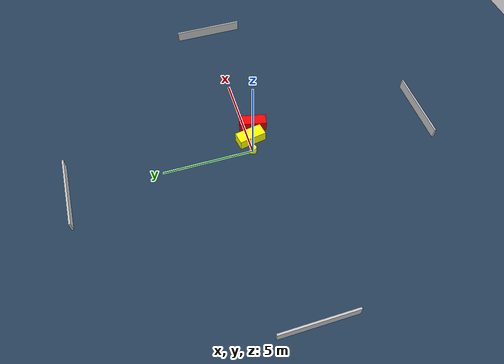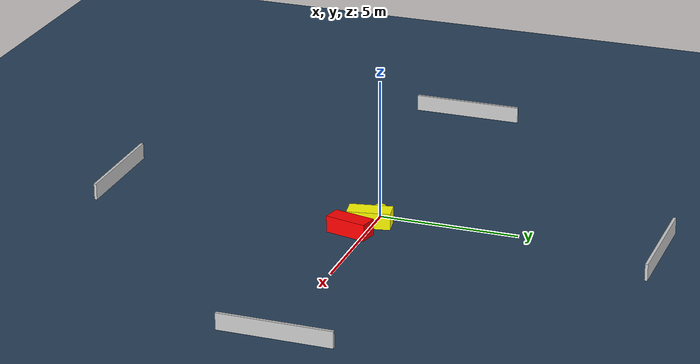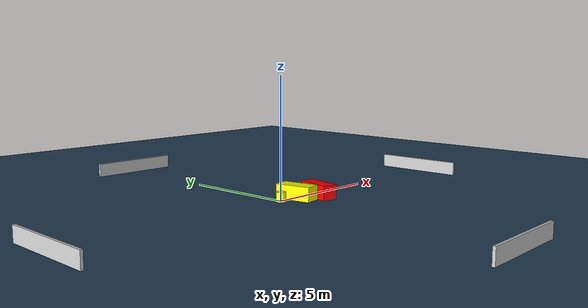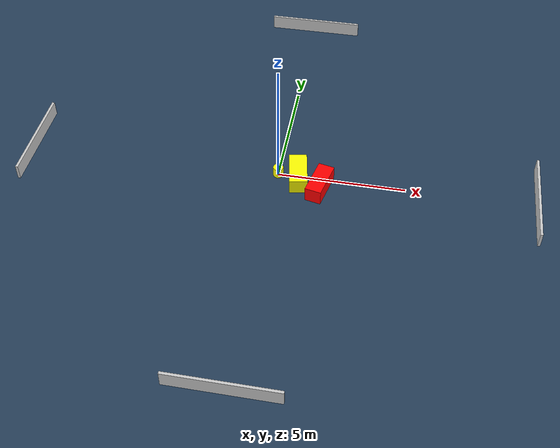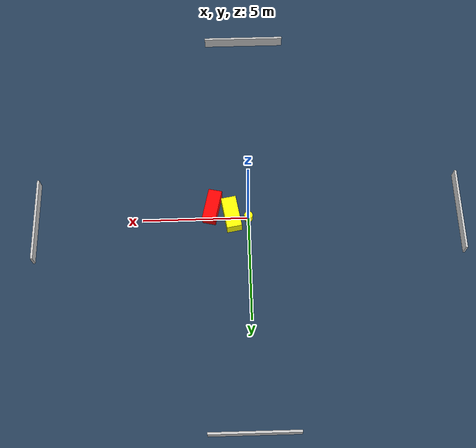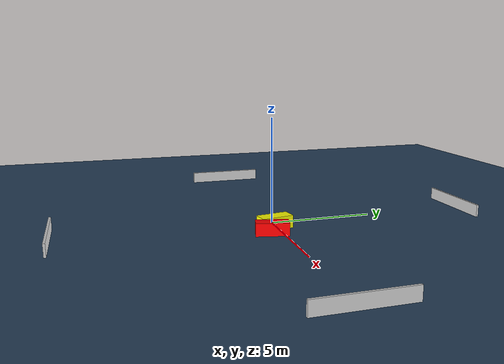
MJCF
<?xml version="1.0" ?>
<mujoco model="generated_environment">
  <option timestep="0.01" integrator="RK4" cone="elliptic"/>
  <default>
    <geom density="1"/>
  </default>
  <asset>
    <texture builtin="gradient" height="3072" name="skybox" rgb1="0.3 0.5 0.7" rgb2="0 0 0" type="skybox" width="512"/>
    <texture builtin="checker" height="300" name="groundplane" rgb1="0.2 0.3 0.4" rgb2="0.1 0.2 0.3" type="2d" width="300"/>
    <material name="groundplane" reflectance="0.2" texrepeat="5 5" texture="groundplane"/>
  </asset>
  <worldbody>
    <light dir="0 0 -1" directional="true" pos="0 0 1.5"/>
    <geom condim="3" friction="0.5 0.005 0.001" material="groundplane" name="floor" pos="0 0 0" size="0 0 0.05" type="plane"/>
    <body name="walls">
      <geom name="wall_1" condim="4" pos="-10.0 0.0 0.3" rgba="0.800000011920929 0.800000011920929 0.800000011920929 1.0" size="0.05 2.0 0.3" type="box"/>
      <geom name="wall_2" condim="4" pos="10.0 0.0 0.3" rgba="0.800000011920929 0.800000011920929 0.800000011920929 1.0" size="0.05 2.0 0.3" type="box"/>
      <geom name="wall_3" condim="4" pos="0.0 -10.0 0.3" rgba="0.800000011920929 0.800000011920929 0.800000011920929 1.0" size="2.0 0.05 0.3" type="box"/>
      <geom name="wall_4" condim="4" pos="0.0 10.0 0.3" rgba="0.800000011920929 0.800000011920929 0.800000011920929 1.0" size="2.0 0.05 0.3" type="box"/>
    </body>
    <body name="robot">
      <joint name="joint_x" type="slide" pos="0 0 0" axis="1 0 0"/>
      <joint name="joint_y" type="slide" pos="0 0 0" axis="0 1 0"/>
      <geom name="robot" type="cylinder" pos="0.0 0.0 0.2" size="0.2 0.2 0.0" mass="5.0" friction="1.0 0.005 0.0001" condim="4" rgba="1.0 1.0 0.0 1.0"/>
    </body>
    <body name="obstacle_1_movable">
      <geom name="obstacle_1_movable" condim="4" pos="0.8023924279282276 -0.10759729418686732 0.3" euler="0 0 190.0387047821162" friction="0.0 0.005 0.001" rgba="1.0 1.0 0.0 1.0" size="0.3516646881978016 0.7688523145311017 0.3" type="box" mass="0.1"/>
      <joint type="free"/>
    </body>
    <body name="obstacle_2_static">
      <geom name="obstacle_2_static" condim="4" pos="1.7090302389849032 -0.5088860639339792 0.3" euler="0 0 77.40099423815576" friction="0.0 0.005 0.001" rgba="1.0 0.0 0.0 1.0" size="0.756351932362535 0.31899303319776984 0.3" type="box"/>
    </body>
  </worldbody>
  <actuator>
    <motor name="actuator_x" joint="joint_x" gear="1" ctrlrange="-1 1"/>
    <motor name="actuator_y" joint="joint_y" gear="1" ctrlrange="-1 1"/>
  </actuator>
</mujoco>
